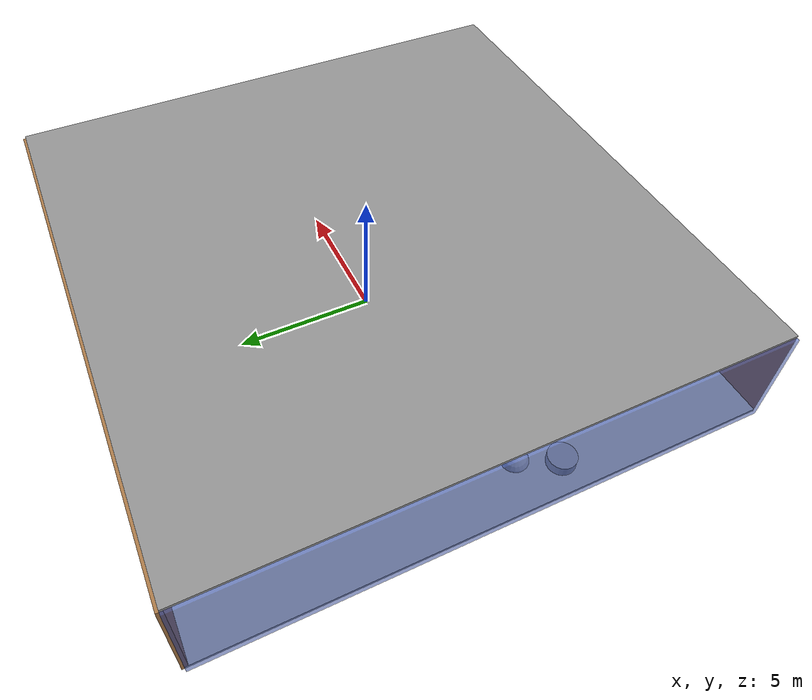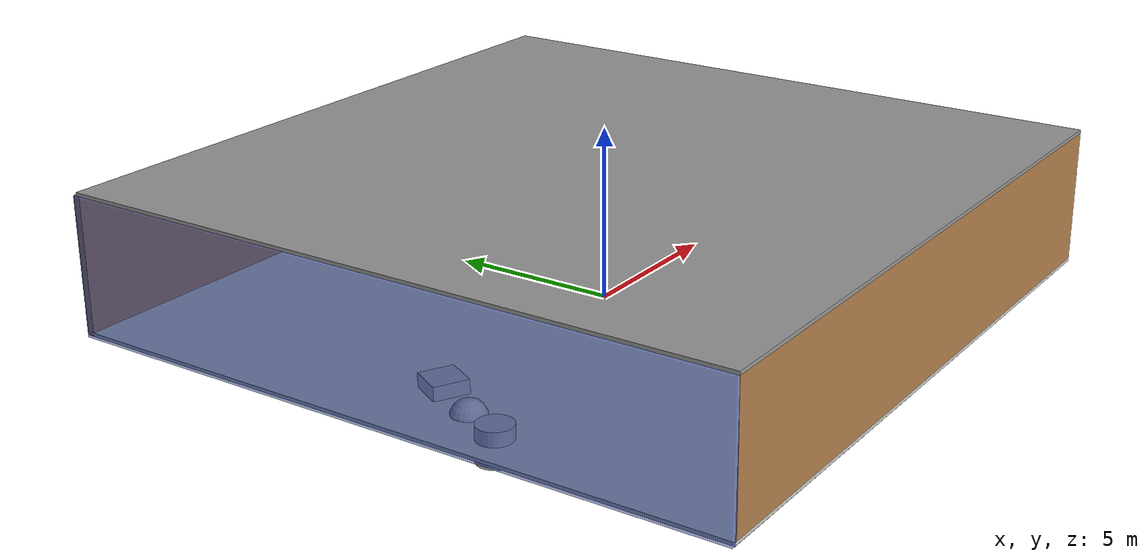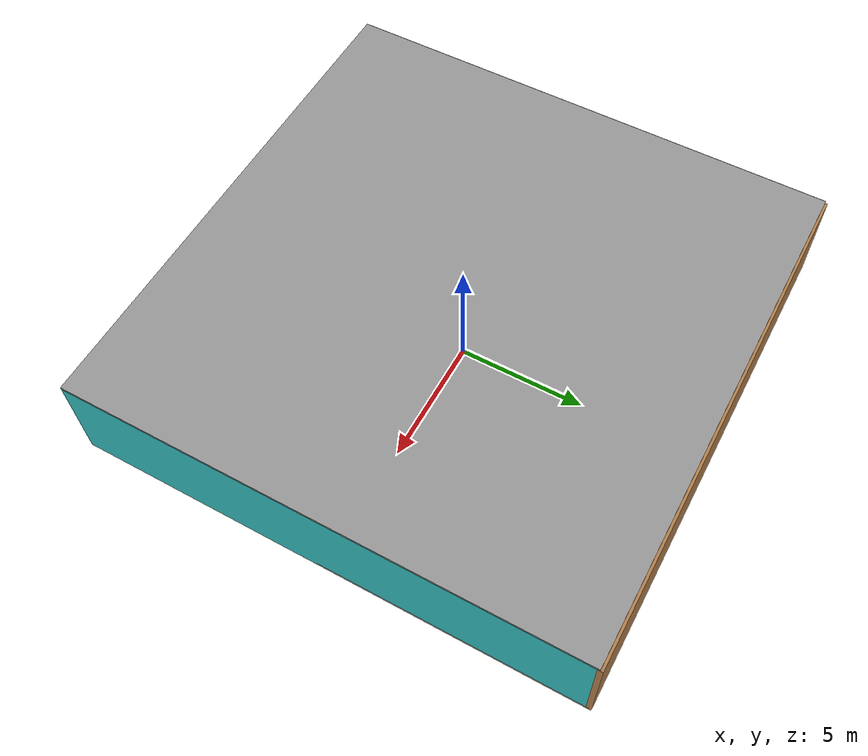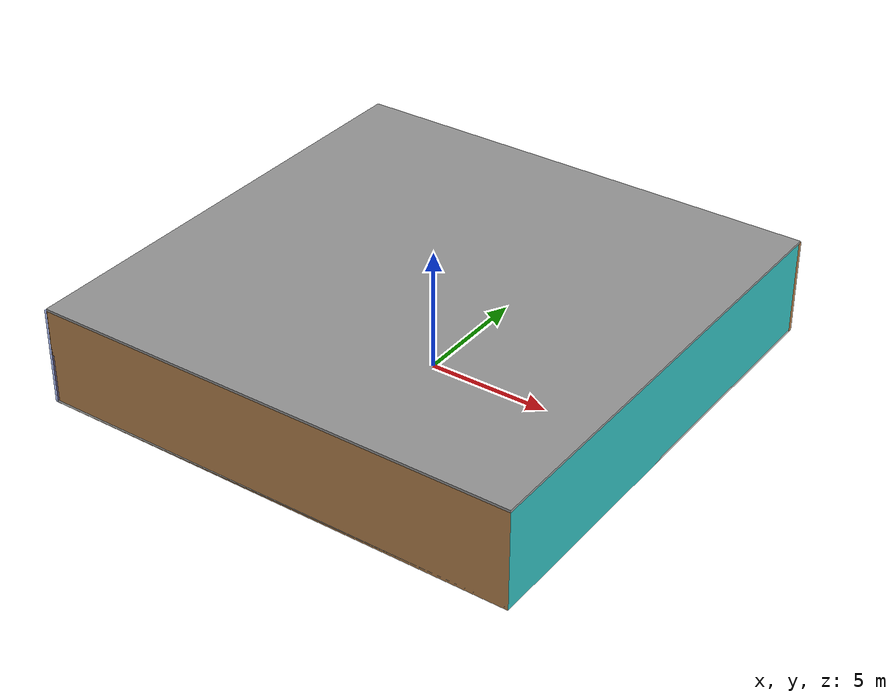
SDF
<sdf version="1.4">
 <world name="default">
  <physics type="ode">
   <max_step_size>0.001</max_step_size>
   <real_time_factor>1</real_time_factor>
   <real_time_update_rate>1000</real_time_update_rate>
   <gravity>0 0 -9.8</gravity>
  </physics>
  <scene><ambient>0.4 0.4 0.4 1</ambient><background>0.7 0.7 0.7 1</background><shadows>1</shadows></scene>
  <model name="Surrounding">
   <static>1</static>
   <link name="Ceiling">
    <collision name="Ceiling_Collision"><geometry><box><size>20 20 0.1</size></box></geometry></collision>
    <visual name="Ceiling_Visual">
     <geometry><box><size>20 20 0.1</size></box></geometry>
     <material>
      <script><uri>file://media/materials/scripts/gazebo.material</uri><name>Gazebo/Grey</name></script>
     </material>
    </visual>
    <pose>0 0 4.05 0 0 0</pose>
   </link>
   <link name="Wall_South">
    <collision name="Wall_South_Collision">
     <geometry><box><size>20 0 4</size></box></geometry>
     <pose>0 0 2 0 -0 0</pose>
    </collision>
    <visual name="Wall_South_Visual">
     <pose>0 0 2 0 -0 0</pose>
     <geometry><box><size>20 0 4</size></box></geometry>
     <material>
      <script><uri>file://media/materials/scripts/gazebo.material</uri><name>Gazebo/WoodPallet</name></script>
     </material>
    </visual>
    <velocity_decay><linear>0</linear><angular>0</angular></velocity_decay>
    <pose>0 -10 0 0 -0 0</pose>
   </link>
   <link name="Wall_East">
    <collision name="Wall_21_Collision">
     <geometry><box><size>20 0 4</size></box></geometry>
     <pose>0 0 2 0 -0 0</pose>
    </collision>
    <visual name="Wall_21_Visual">
     <pose>0 0 2 0 -0 0</pose>
     <geometry><box><size>20 0 4</size></box></geometry>
     <material>
      <script><uri>file://media/materials/scripts/gazebo.material</uri><name>Gazebo/Turquoise</name></script>
     </material>
    </visual>
    <velocity_decay><linear>0</linear><angular>0</angular></velocity_decay>
    <pose>10 0 0 0 -0 1.5708</pose>
   </link>
   <link name="Wall_North">
    <collision name="Wall_22_Collision">
     <geometry><box><size>20 0.2 4</size></box></geometry>
     <pose>0 0 2 0 -0 0</pose>
    </collision>
    <visual name="Wall_22_Visual">
     <pose>0 0 2 0 -0 0</pose>
     <geometry><box><size>20 0.2 4</size></box></geometry>
     <material>
      <script><uri>file://media/materials/scripts/gazebo.material</uri><name>Gazebo/Wood</name></script>
     </material>
    </visual>
    <velocity_decay><linear>0</linear><angular>0</angular></velocity_decay>
    <pose>0 10 0 0 -0 0</pose>
   </link>
   <link name="Wall_West">
    <collision name="Wall_23_Collision">
     <geometry><box><size>20 0.2 4</size></box></geometry>
     <pose>0 0 2 0 -0 0</pose>
    </collision>
    <visual name="Wall_23_Visual">
     <pose>0 0 2 0 -0 0</pose>
     <geometry><box><size>20 0.2 4</size></box></geometry>
     <material>
      <script><uri>file://media/materials/scripts/gazebo.material</uri><name>Gazebo/BlueTransparent</name></script>
     </material>
    </visual>
    <velocity_decay><linear>0</linear><angular>0</angular></velocity_decay>
    <pose>-10 0 0 0 0 -1.5708</pose>
   </link>
   <link name="Ground_link">
    <collision name="collision">
     <pose>0 0 .05 0 -0 0</pose>
     <geometry><box><size>20 20 0.1</size></box></geometry>
    </collision>
    <visual name="visual">
     <pose>0 0 .05 0 -0 0</pose>
     <geometry><box><size>20 20 0.1</size></box></geometry>
     <material>
      <script><uri>file://media/materials/scripts/gazebo.material</uri><name>Gazebo/CeilingTiled</name></script>
     </material>
    </visual>
   </link>
   <static>1</static>
  </model>
  <spherical_coordinates>
   <surface_model>EARTH_WGS84</surface_model>
   <latitude_deg>0</latitude_deg>
   <longitude_deg>0</longitude_deg>
   <elevation>0</elevation>
   <heading_deg>0</heading_deg>
  </spherical_coordinates>
  <light name="lightball_0" type="diffuse">
   <diffuse>0.8 0.8 0.8 1</diffuse>
   <specular>0.2 0.2 0.2 1</specular>
   <attenuation>
    <range>100</range>
    <constant>0.7</constant>
    <linear>0.01</linear>
    <quadratic>0.001</quadratic>
   </attenuation>
   <direction>-0.5 0.1 -0.9</direction>
   <pose>8.388117595 4.6910339169 2.17511419054 0 0 0</pose>
  </light>
  <light name="lightball_1" type="diffuse">
   <diffuse>0.8 0.8 0.8 1</diffuse>
   <specular>0.2 0.2 0.2 1</specular>
   <attenuation>
    <range>100</range>
    <constant>0.7</constant>
    <linear>0.01</linear>
    <quadratic>0.001</quadratic>
   </attenuation>
   <direction>-0.5 0.1 -0.9</direction>
   <pose>3.31432385041 -1.89853313142 3.14112716534 0 0 0</pose>
  </light>
  <include>
   <uri>model://textured_shapes</uri>
   <pose>-8.25592799355 -1.52161378936 0 0 0 2.65765647817</pose>
  </include>
  <include>
   <uri>model://robocup_3Dsim_goal</uri>
   <pose>0.763505942858 0.719618087407 0 0 0 2.55919065515</pose>
  </include>
  <include>
   <uri>model://textured_shapes</uri>
   <pose>1.01835152849 7.69365869428 0 0 0 1.7067915897</pose>
  </include>
  <include>
   <uri>model://textured_shapes</uri>
   <pose>5.0378348368 7.01217805973 0 0 0 1.66551005526</pose>
  </include>
  <include>
   <uri>model://textured_shapes</uri>
   <pose>7.03574939534 4.5398935045 0 0 0 1.99762805706</pose>
  </include>
 </world>
</sdf>

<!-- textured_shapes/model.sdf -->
<sdf version="1.6">
  <model name="textured_shapes">
    <pose>0 0 0.5 0 0 0</pose>
    <link name="box">
      <pose>0 -1.5 0 0 0 0</pose>
      <collision name="collision">
        <geometry>
          <box>
            <size>1 1 1</size>
          </box>
        </geometry>
      </collision>
      <visual name="visual">
        <geometry>
          <box>
            <size>1 1 1</size>
          </box>
        </geometry>
        <material>
          <script>
            <uri>model://../model_source/models/textured_shapes/materials/scripts</uri>
            <uri>model://../model_source/models/textured_shapes/materials/textures</uri>
            <name>TexturedShape/Squares</name>
          </script>
        </material>
      </visual>
    </link>
    <link name="sphere">
      <collision name="collision">
        <geometry>
          <sphere>
            <radius>0.5</radius>
          </sphere>
        </geometry>
      </collision>
      <visual name="visual">
        <geometry>
          <sphere>
            <radius>0.5</radius>
          </sphere>
        </geometry>
        <material>
          <script>
            <uri>model://../model_source/models/textured_shapes/materials/scripts</uri>
            <uri>model://../model_source/models/textured_shapes/materials/textures</uri>
            <name>TexturedShape/Squares</name>
          </script>
        </material>
      </visual>
    </link>
    <link name="cylinder">
      <pose>0 1.5 0 0 0 0</pose>
      <collision name="collision">
        <geometry>
          <cylinder>
            <radius>0.5</radius>
            <length>1</length>
          </cylinder>
        </geometry>
      </collision>
      <visual name="visual">
        <geometry>
          <cylinder>
            <radius>0.5</radius>
            <length>1</length>
          </cylinder>
        </geometry>
        <material>
          <script>
            <uri>model://../model_source/models/textured_shapes/materials/scripts</uri>
            <uri>model://../model_source/models/textured_shapes/materials/textures</uri>
            <name>TexturedShape/Squares</name>
          </script>
        </material>
      </visual>
    </link>
  </model>
</sdf>

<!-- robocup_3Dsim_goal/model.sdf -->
<sdf version="1.5">
  <model name="robocup_3d_goal">
    <static>true</static>
    <link name="left_post">
      <pose>0 1.05 0.45 0 0 0</pose>
      <collision name="collision">
        <geometry>
          <cylinder>
            <radius>0.05</radius>
            <length>0.9</length>
          </cylinder>
        </geometry>
      </collision>
      <visual name="visual">
        <geometry>
          <cylinder>
            <radius>0.05</radius>
            <length>0.9</length>
          </cylinder>
        </geometry>
        <material>
          <script>
            <uri>file://media/materials/scripts/gazebo.material</uri>
            <name>Gazebo/ZincYellow</name>
          </script>
        </material>
      </visual>
    </link>
    <link name="left_support_horiz_lower">
      <pose>0.30 1.05 0.01 0 0 0</pose>
      <collision name="collision">
        <geometry>
          <box>
            <size>0.50 0.02 0.02</size>
          </box>
        </geometry>
      </collision>
      <visual name="visual">
        <geometry>
          <box>
            <size>0.50 0.02 0.02</size>
          </box>
        </geometry>
        <material>
          <script>
            <uri>file://media/materials/scripts/gazebo.material</uri>
            <name>Gazebo/White</name>
          </script>
        </material>
      </visual>
    </link>
    <link name="left_support_horiz_upper">
      <pose>0.30 1.05 0.79 0 0 0</pose>
      <collision name="collision">
        <geometry>
          <box>
            <size>0.50 0.02 0.02</size>
          </box>
        </geometry>
      </collision>
      <visual name="visual">
        <geometry>
          <box>
            <size>0.50 0.02 0.02</size>
          </box>
        </geometry>
        <material>
          <script>
            <uri>file://media/materials/scripts/gazebo.material</uri>
            <name>Gazebo/White</name>
          </script>
        </material>
      </visual>
    </link>
    <link name="left_support_vertical">
      <pose>0.56 1.05 0.4 0 1.5708 0</pose>
      <collision name="collision">
        <geometry>
          <box>
            <size>0.80 0.02 0.02</size>
          </box>
        </geometry>
      </collision>
      <visual name="visual">
        <geometry>
          <box>
            <size>0.80 0.02 0.02</size>
          </box>
        </geometry>
        <material>
          <script>
            <uri>file://media/materials/scripts/gazebo.material</uri>
            <name>Gazebo/White</name>
          </script>
        </material>
      </visual>
    </link>
    <link name="right_support_horiz_lower">
      <pose>0.30 -1.05 0.01 0 0 0</pose>
      <collision name="collision">
        <geometry>
          <box>
            <size>0.50 0.02 0.02</size>
          </box>
        </geometry>
      </collision>
      <visual name="visual">
        <geometry>
          <box>
            <size>0.50 0.02 0.02</size>
          </box>
        </geometry>
        <material>
          <script>
            <uri>file://media/materials/scripts/gazebo.material</uri>
            <name>Gazebo/White</name>
          </script>
        </material>
      </visual>
    </link>
    <link name="right_support_horiz_upper">
      <pose>0.30 -1.05 0.79 0 0 0</pose>
      <collision name="collision">
        <geometry>
          <box>
            <size>0.50 0.02 0.02</size>
          </box>
        </geometry>
      </collision>
      <visual name="visual">
        <geometry>
          <box>
            <size>0.50 0.02 0.02</size>
          </box>
        </geometry>
        <material>
          <script>
            <uri>file://media/materials/scripts/gazebo.material</uri>
            <name>Gazebo/White</name>
          </script>
        </material>
      </visual>
    </link>
    <link name="right_support_vertical">
      <pose>0.56 -1.05 0.4 0 1.5708 0</pose>
      <collision name="collision">
        <geometry>
          <box>
            <size>0.80 0.02 0.02</size>
          </box>
        </geometry>
      </collision>
      <visual name="visual">
        <geometry>
          <box>
            <size>0.80 0.02 0.02</size>
          </box>
        </geometry>
        <material>
          <script>
            <uri>file://media/materials/scripts/gazebo.material</uri>
            <name>Gazebo/White</name>
          </script>
        </material>
      </visual>
    </link>
    <link name="center_support_horiz_lower">
      <pose>0.56 0 0.01 0 1.5708 0</pose>
      <collision name="collision">
        <geometry>
          <box>
            <size>0.02 2.08 0.02</size>
          </box>
        </geometry>
      </collision>
      <visual name="visual">
        <geometry>
          <box>
            <size>0.02 2.08 0.02</size>
          </box>
        </geometry>
        <material>
          <script>
            <uri>file://media/materials/scripts/gazebo.material</uri>
            <name>Gazebo/White</name>
          </script>
        </material>
      </visual>
    </link>
    <link name="center_support_horiz_upper">
      <pose>0.56 0 0.79 0 1.5708 0</pose>
      <collision name="collision">
        <geometry>
          <box>
            <size>0.02 2.08 0.02</size>
          </box>
        </geometry>
      </collision>
      <visual name="visual">
        <geometry>
          <box>
            <size>0.02 2.08 0.02</size>
          </box>
        </geometry>
        <material>
          <script>
            <uri>file://media/materials/scripts/gazebo.material</uri>
            <name>Gazebo/White</name>
          </script>
        </material>
      </visual>
    </link>
    <link name="right_post">
      <pose>0 -1.05 0.45 0 0 0</pose>
      <collision name="collision">
        <geometry>
          <cylinder>
            <radius>0.05</radius>
            <length>0.9</length>
          </cylinder>
        </geometry>
      </collision>
      <visual name="visual">
        <geometry>
          <cylinder>
            <radius>0.05</radius>
            <length>0.9</length>
          </cylinder>
        </geometry>
        <material>
          <script>
            <uri>file://media/materials/scripts/gazebo.material</uri>
            <name>Gazebo/ZincYellow</name>
          </script>
        </material>
      </visual>
    </link>
    <link name="crossbar">
      <pose>0 0 0.85 1.57 1.57 0</pose>
      <collision name="collision">
        <geometry>
          <cylinder>
            <radius>0.05</radius>
            <length>2.0</length>
          </cylinder>
        </geometry>
      </collision>
      <visual name="visual">
        <geometry>
          <cylinder>
            <radius>0.05</radius>
            <length>2.0</length>
          </cylinder>
        </geometry>
        <material>
          <script>
            <uri>file://media/materials/scripts/gazebo.material</uri>
            <name>Gazebo/ZincYellow</name>
          </script>
        </material>
      </visual>
    </link>
    <link name="center_net">
      <pose>0.56 0 0.40 0 0 0</pose>
      <collision name="collision">
        <geometry>
          <box>
            <size>0.01 2.1 0.80</size>
          </box>
        </geometry>
      </collision>
      <visual name="visual">
        <geometry>
          <box>
            <size>0.01 2.1 0.80</size>
          </box>
        </geometry>
        <material>
          <script>
            <uri>model://../model_source/models/robocup09_spl_field/materials/scripts/</uri>
            <uri>model://../model_source/models/robocup09_spl_field/materials/textures/</uri>
            <name>RoboCup/Net</name>
          </script>
        </material>
      </visual>
    </link>
    <link name="left_net">
      <pose>0.30 1.05 0.40 0 0 0</pose>
      <collision name="collision">
        <geometry>
          <box>
            <size>0.50 0.01 0.76</size>
          </box>
        </geometry>
      </collision>
      <visual name="visual">
        <geometry>
          <box>
            <size>0.50 0.01 0.76</size>
          </box>
        </geometry>
        <material>
          <script>
            <uri>model://../model_source/models/robocup09_spl_field/materials/scripts/</uri>
            <uri>model://../model_source/models/robocup09_spl_field/materials/textures/</uri>
            <name>RoboCup/Net</name>
          </script>
        </material>
      </visual>
    </link>
    <link name="right_net">
      <pose>0.30 -1.05 0.40 0 0 0</pose>
      <collision name="collision">
        <geometry>
          <box>
            <size>0.50 0.01 0.76</size>
          </box>
        </geometry>
      </collision>
      <visual name="visual">
        <geometry>
          <box>
            <size>0.50 0.01 0.76</size>
          </box>
        </geometry>
        <material>
          <script>
            <uri>model://../model_source/models/robocup09_spl_field/materials/scripts/</uri>
            <uri>model://../model_source/models/robocup09_spl_field/materials/textures/</uri>
            <name>RoboCup/Net</name>
          </script>
        </material>
      </visual>
    </link>
  </model>
</sdf>
